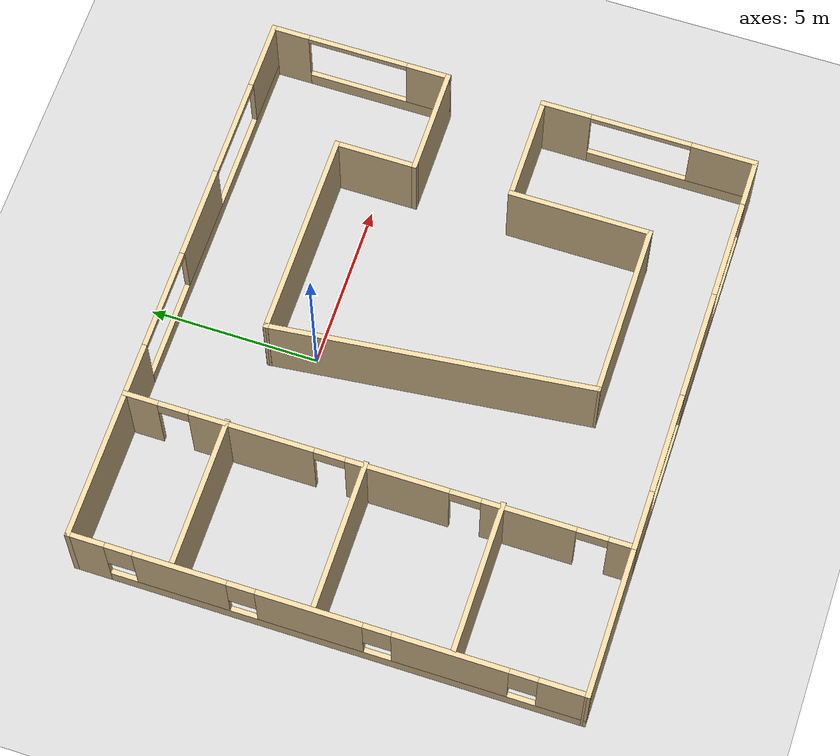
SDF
<sdf version="1.6">
 <world name="default">
  <light name="sun" type="directional">
   <pose>0 0 10 0 -0 0</pose>
   <diffuse>0.8 0.8 0.8 1</diffuse>
   <specular>0.2 0.2 0.2 1</specular>
   <attenuation>
    <range>1000</range>
    <constant>0.9</constant>
    <linear>0.01</linear>
    <quadratic>0.001</quadratic>
   </attenuation>
   <direction>-0.5 0.1 -0.9</direction>
  </light>
  <model name="ground_plane">
   <static>1</static>
   <link name="link">
    <collision name="collision">
     <geometry><plane><normal>0 0 1</normal><size>100 100</size></plane></geometry>
     <surface>
      <contact><collide_bitmask>65535</collide_bitmask></contact>
      <friction><ode><mu>100</mu><mu2>50</mu2></ode></friction>
     </surface>
    </collision>
    <visual name="visual">
     <cast_shadows>0</cast_shadows>
     <geometry><plane><normal>0 0 1</normal><size>100 100</size></plane></geometry>
     <material>
      <script><uri>file://media/materials/scripts/gazebo.material</uri><name>Gazebo/Grey</name></script>
     </material>
    </visual>
   </link>
  </model>
  <gravity>0 0 -9.8</gravity>
  <magnetic_field>6e-06 2.3e-05 -4.2e-05</magnetic_field>
  <atmosphere type="adiabatic"/>
  <physics name="default_physics" default="0" type="ode">
   <max_step_size>0.001</max_step_size>
   <real_time_factor>1</real_time_factor>
   <real_time_update_rate>1000</real_time_update_rate>
  </physics>
  <scene><ambient>0.4 0.4 0.4 1</ambient><background>0.7 0.7 0.7 1</background><shadows>1</shadows></scene>
  <spherical_coordinates>
   <surface_model>EARTH_WGS84</surface_model>
   <latitude_deg>0</latitude_deg>
   <longitude_deg>0</longitude_deg>
   <elevation>0</elevation>
   <heading_deg>0</heading_deg>
  </spherical_coordinates>
  <model name="office">
   <pose>0.38558 -3.06539 0 0 -0 0</pose>
   <link name="Wall_16">
    <pose>2.16663 7.30005 0 0 -0 0</pose>
    <visual name="Wall_16_Visual_0">
     <pose>-5.43994 0 1.25 0 -0 0</pose>
     <geometry><box><size>1.62012 0.15 2.5</size></box></geometry>
     <material>
      <script><uri>file://media/materials/scripts/gazebo.material</uri><name>Gazebo/Grey</name></script>
      <ambient>0.921569 0.807843 0.615686 1</ambient>
     </material>
     <meta><layer>0</layer></meta>
    </visual>
    <collision name="Wall_16_Collision_0">
     <geometry><box><size>1.62012 0.15 2.5</size></box></geometry>
     <pose>-5.43994 0 1.25 0 -0 0</pose>
    </collision>
    <visual name="Wall_16_Visual_1">
     <pose>0.810061 0 0.25 0 -0 0</pose>
     <geometry><box><size>10.8799 0.15 0.5</size></box></geometry>
     <material>
      <script><uri>file://media/materials/scripts/gazebo.material</uri><name>Gazebo/Grey</name></script>
      <ambient>0.921569 0.807843 0.615686 1</ambient>
     </material>
     <meta><layer>0</layer></meta>
    </visual>
    <collision name="Wall_16_Collision_1">
     <geometry><box><size>10.8799 0.15 0.5</size></box></geometry>
     <pose>0.810061 0 0.25 0 -0 0</pose>
    </collision>
    <visual name="Wall_16_Visual_2">
     <pose>-0.243954 0 1.5 0 -0 0</pose>
     <geometry><box><size>2.77185 0.15 2</size></box></geometry>
     <material>
      <script><uri>file://media/materials/scripts/gazebo.material</uri><name>Gazebo/Grey</name></script>
      <ambient>0.921569 0.807843 0.615686 1</ambient>
     </material>
     <meta><layer>0</layer></meta>
    </visual>
    <collision name="Wall_16_Collision_2">
     <geometry><box><size>2.77185 0.15 2</size></box></geometry>
     <pose>-0.243954 0 1.5 0 -0 0</pose>
    </collision>
    <visual name="Wall_16_Visual_3">
     <pose>5.19599 0 1.5 0 -0 0</pose>
     <geometry><box><size>2.10803 0.15 2</size></box></geometry>
     <material>
      <script><uri>file://media/materials/scripts/gazebo.material</uri><name>Gazebo/Grey</name></script>
      <ambient>0.921569 0.807843 0.615686 1</ambient>
     </material>
     <meta><layer>0</layer></meta>
    </visual>
    <collision name="Wall_16_Collision_3">
     <geometry><box><size>2.10803 0.15 2</size></box></geometry>
     <pose>5.19599 0 1.5 0 -0 0</pose>
    </collision>
    <visual name="Wall_16_Visual_4">
     <pose>-3.12988 0 2.4 0 -0 0</pose>
     <geometry><box><size>3 0.15 0.2</size></box></geometry>
     <material>
      <script><uri>file://media/materials/scripts/gazebo.material</uri><name>Gazebo/Grey</name></script>
      <ambient>0.921569 0.807843 0.615686 1</ambient>
     </material>
     <meta><layer>0</layer></meta>
    </visual>
    <collision name="Wall_16_Collision_4">
     <geometry><box><size>3 0.15 0.2</size></box></geometry>
     <pose>-3.12988 0 2.4 0 -0 0</pose>
    </collision>
    <visual name="Wall_16_Visual_5">
     <pose>2.64197 0 2.4 0 -0 0</pose>
     <geometry><box><size>3 0.15 0.2</size></box></geometry>
     <material>
      <script><uri>file://media/materials/scripts/gazebo.material</uri><name>Gazebo/Grey</name></script>
      <ambient>0.921569 0.807843 0.615686 1</ambient>
     </material>
     <meta><layer>0</layer></meta>
    </visual>
    <collision name="Wall_16_Collision_5">
     <geometry><box><size>3 0.15 0.2</size></box></geometry>
     <pose>2.64197 0 2.4 0 -0 0</pose>
    </collision>
   </link>
   <link name="Wall_17">
    <pose>8.34163 4.62505 0 0 0 -1.5708</pose>
    <visual name="Wall_17_Visual_0">
     <pose>-2.16525 0 1.25 0 -0 0</pose>
     <geometry><box><size>1.16949 0.15 2.5</size></box></geometry>
     <material>
      <script><uri>file://media/materials/scripts/gazebo.material</uri><name>Gazebo/Grey</name></script>
      <ambient>0.921569 0.807843 0.615686 1</ambient>
     </material>
     <meta><layer>0</layer></meta>
    </visual>
    <collision name="Wall_17_Collision_0">
     <geometry><box><size>1.16949 0.15 2.5</size></box></geometry>
     <pose>-2.16525 0 1.25 0 -0 0</pose>
    </collision>
    <visual name="Wall_17_Visual_1">
     <pose>0.584746 0 0.25 0 -0 0</pose>
     <geometry><box><size>4.33051 0.15 0.5</size></box></geometry>
     <material>
      <script><uri>file://media/materials/scripts/gazebo.material</uri><name>Gazebo/Grey</name></script>
      <ambient>0.921569 0.807843 0.615686 1</ambient>
     </material>
     <meta><layer>0</layer></meta>
    </visual>
    <collision name="Wall_17_Collision_1">
     <geometry><box><size>4.33051 0.15 0.5</size></box></geometry>
     <pose>0.584746 0 0.25 0 -0 0</pose>
    </collision>
    <visual name="Wall_17_Visual_2">
     <pose>2.08475 0 1.5 0 -0 0</pose>
     <geometry><box><size>1.33051 0.15 2</size></box></geometry>
     <material>
      <script><uri>file://media/materials/scripts/gazebo.material</uri><name>Gazebo/Grey</name></script>
      <ambient>0.921569 0.807843 0.615686 1</ambient>
     </material>
     <meta><layer>0</layer></meta>
    </visual>
    <collision name="Wall_17_Collision_2">
     <geometry><box><size>1.33051 0.15 2</size></box></geometry>
     <pose>2.08475 0 1.5 0 -0 0</pose>
    </collision>
    <visual name="Wall_17_Visual_3">
     <pose>-0.080508 0 2.4 0 -0 0</pose>
     <geometry><box><size>3 0.15 0.2</size></box></geometry>
     <material>
      <script><uri>file://media/materials/scripts/gazebo.material</uri><name>Gazebo/Grey</name></script>
      <ambient>0.921569 0.807843 0.615686 1</ambient>
     </material>
     <meta><layer>0</layer></meta>
    </visual>
    <collision name="Wall_17_Collision_3">
     <geometry><box><size>3 0.15 0.2</size></box></geometry>
     <pose>-0.080508 0 2.4 0 -0 0</pose>
    </collision>
   </link>
   <link name="Wall_18">
    <collision name="Wall_18_Collision">
     <geometry><box><size>3.25 0.15 2.5</size></box></geometry>
     <pose>0 0 1.25 0 -0 0</pose>
    </collision>
    <visual name="Wall_18_Visual">
     <pose>0 0 1.25 0 -0 0</pose>
     <geometry><box><size>3.25 0.15 2.5</size></box></geometry>
     <material>
      <script><uri>file://media/materials/scripts/gazebo.material</uri><name>Gazebo/Grey</name></script>
      <ambient>0.921569 0.807843 0.615686 1</ambient>
     </material>
     <meta><layer>0</layer></meta>
    </visual>
    <pose>6.79163 1.95005 0 0 -0 3.14159</pose>
   </link>
   <link name="Wall_19">
    <collision name="Wall_19_Collision">
     <geometry><box><size>2.5 0.15 2.5</size></box></geometry>
     <pose>0 0 1.25 0 -0 0</pose>
    </collision>
    <visual name="Wall_19_Visual">
     <pose>0 0 1.25 0 -0 0</pose>
     <geometry><box><size>2.5 0.15 2.5</size></box></geometry>
     <material>
      <script><uri>file://media/materials/scripts/gazebo.material</uri><name>Gazebo/Grey</name></script>
      <ambient>0.921569 0.807843 0.615686 1</ambient>
     </material>
     <meta><layer>0</layer></meta>
    </visual>
    <pose>5.24163 3.12505 0 0 -0 1.5708</pose>
   </link>
   <link name="Wall_20">
    <collision name="Wall_20_Collision">
     <geometry><box><size>6.25 0.15 2.5</size></box></geometry>
     <pose>0 0 1.25 0 -0 0</pose>
    </collision>
    <visual name="Wall_20_Visual">
     <pose>0 0 1.25 0 -0 0</pose>
     <geometry><box><size>6.25 0.15 2.5</size></box></geometry>
     <material>
      <script><uri>file://media/materials/scripts/gazebo.material</uri><name>Gazebo/Grey</name></script>
      <ambient>0.921569 0.807843 0.615686 1</ambient>
     </material>
     <meta><layer>0</layer></meta>
    </visual>
    <pose>2.19163 4.30005 0 0 -0 3.14159</pose>
   </link>
   <link name="Wall_21">
    <collision name="Wall_21_Collision">
     <geometry><box><size>9.54415 0.15 2.5</size></box></geometry>
     <pose>0 0 1.25 0 -0 0</pose>
    </collision>
    <visual name="Wall_21_Visual">
     <pose>0 0 1.25 0 -0 0</pose>
     <geometry><box><size>9.54415 0.15 2.5</size></box></geometry>
     <material>
      <script><uri>file://media/materials/scripts/gazebo.material</uri><name>Gazebo/Grey</name></script>
      <ambient>0.921569 0.807843 0.615686 1</ambient>
     </material>
     <meta><layer>0</layer></meta>
    </visual>
    <pose>-0.349906 -0.369424 0 0 0 -1.46233</pose>
   </link>
   <link name="Wall_22">
    <collision name="Wall_22_Collision">
     <geometry><box><size>5.25 0.15 2.5</size></box></geometry>
     <pose>0 0 1.25 0 -0 0</pose>
    </collision>
    <visual name="Wall_22_Visual">
     <pose>0 0 1.25 0 -0 0</pose>
     <geometry><box><size>5.25 0.15 2.5</size></box></geometry>
     <material>
      <script><uri>file://media/materials/scripts/gazebo.material</uri><name>Gazebo/Grey</name></script>
      <ambient>0.921569 0.807843 0.615686 1</ambient>
     </material>
     <meta><layer>0</layer></meta>
    </visual>
    <pose>2.70856 -5.0389 0 0 -0 0</pose>
   </link>
   <link name="Wall_23">
    <collision name="Wall_23_Collision">
     <geometry><box><size>4.25 0.15 2.5</size></box></geometry>
     <pose>0 0 1.25 0 -0 0</pose>
    </collision>
    <visual name="Wall_23_Visual">
     <pose>0 0 1.25 0 -0 0</pose>
     <geometry><box><size>4.25 0.15 2.5</size></box></geometry>
     <material>
      <script><uri>file://media/materials/scripts/gazebo.material</uri><name>Gazebo/Grey</name></script>
      <ambient>0.921569 0.807843 0.615686 1</ambient>
     </material>
     <meta><layer>0</layer></meta>
    </visual>
    <pose>5.25856 -2.9889 0 0 -0 1.5708</pose>
   </link>
   <link name="Wall_24">
    <collision name="Wall_24_Collision">
     <geometry><box><size>3.25 0.15 2.5</size></box></geometry>
     <pose>0 0 1.25 0 -0 0</pose>
    </collision>
    <visual name="Wall_24_Visual">
     <pose>0 0 1.25 0 -0 0</pose>
     <geometry><box><size>3.25 0.15 2.5</size></box></geometry>
     <material>
      <script><uri>file://media/materials/scripts/gazebo.material</uri><name>Gazebo/Grey</name></script>
      <ambient>0.921569 0.807843 0.615686 1</ambient>
     </material>
     <meta><layer>0</layer></meta>
    </visual>
    <pose>6.80856 -0.9389 0 0 -0 0</pose>
   </link>
   <link name="Wall_25">
    <pose>8.35856 -4.1139 0 0 0 -1.5708</pose>
    <visual name="Wall_25_Visual_0">
     <pose>-2.4888 0 1.25 0 -0 0</pose>
     <geometry><box><size>1.52241 0.15 2.5</size></box></geometry>
     <material>
      <script><uri>file://media/materials/scripts/gazebo.material</uri><name>Gazebo/Grey</name></script>
      <ambient>0.921569 0.807843 0.615686 1</ambient>
     </material>
     <meta><layer>0</layer></meta>
    </visual>
    <collision name="Wall_25_Collision_0">
     <geometry><box><size>1.52241 0.15 2.5</size></box></geometry>
     <pose>-2.4888 0 1.25 0 -0 0</pose>
    </collision>
    <visual name="Wall_25_Visual_1">
     <pose>0.761203 0 0.25 0 -0 0</pose>
     <geometry><box><size>4.97759 0.15 0.5</size></box></geometry>
     <material>
      <script><uri>file://media/materials/scripts/gazebo.material</uri><name>Gazebo/Grey</name></script>
      <ambient>0.921569 0.807843 0.615686 1</ambient>
     </material>
     <meta><layer>0</layer></meta>
    </visual>
    <collision name="Wall_25_Collision_1">
     <geometry><box><size>4.97759 0.15 0.5</size></box></geometry>
     <pose>0.761203 0 0.25 0 -0 0</pose>
    </collision>
    <visual name="Wall_25_Visual_2">
     <pose>2.2612 0 1.5 0 -0 0</pose>
     <geometry><box><size>1.97759 0.15 2</size></box></geometry>
     <material>
      <script><uri>file://media/materials/scripts/gazebo.material</uri><name>Gazebo/Grey</name></script>
      <ambient>0.921569 0.807843 0.615686 1</ambient>
     </material>
     <meta><layer>0</layer></meta>
    </visual>
    <collision name="Wall_25_Collision_2">
     <geometry><box><size>1.97759 0.15 2</size></box></geometry>
     <pose>2.2612 0 1.5 0 -0 0</pose>
    </collision>
    <visual name="Wall_25_Visual_3">
     <pose>-0.227595 0 2.4 0 -0 0</pose>
     <geometry><box><size>3 0.15 0.2</size></box></geometry>
     <material>
      <script><uri>file://media/materials/scripts/gazebo.material</uri><name>Gazebo/Grey</name></script>
      <ambient>0.921569 0.807843 0.615686 1</ambient>
     </material>
     <meta><layer>0</layer></meta>
    </visual>
    <collision name="Wall_25_Collision_3">
     <geometry><box><size>3 0.15 0.2</size></box></geometry>
     <pose>-0.227595 0 2.4 0 -0 0</pose>
    </collision>
   </link>
   <link name="Wall_27">
    <pose>2.18356 -7.2889 0 0 -0 3.14159</pose>
    <visual name="Wall_27_Visual_0">
     <pose>-5.50692 0 1.25 0 -0 0</pose>
     <geometry><box><size>1.48615 0.15 2.5</size></box></geometry>
     <material>
      <script><uri>file://media/materials/scripts/gazebo.material</uri><name>Gazebo/Grey</name></script>
      <ambient>0.921569 0.807843 0.615686 1</ambient>
     </material>
     <meta><layer>0</layer></meta>
    </visual>
    <collision name="Wall_27_Collision_0">
     <geometry><box><size>1.48615 0.15 2.5</size></box></geometry>
     <pose>-5.50692 0 1.25 0 -0 0</pose>
    </collision>
    <visual name="Wall_27_Visual_1">
     <pose>0.743078 0 0.25 0 -0 0</pose>
     <geometry><box><size>11.0138 0.15 0.5</size></box></geometry>
     <material>
      <script><uri>file://media/materials/scripts/gazebo.material</uri><name>Gazebo/Grey</name></script>
      <ambient>0.921569 0.807843 0.615686 1</ambient>
     </material>
     <meta><layer>0</layer></meta>
    </visual>
    <collision name="Wall_27_Collision_1">
     <geometry><box><size>11.0138 0.15 0.5</size></box></geometry>
     <pose>0.743078 0 0.25 0 -0 0</pose>
    </collision>
    <visual name="Wall_27_Visual_2">
     <pose>-0.138321 0 1.5 0 -0 0</pose>
     <geometry><box><size>3.25105 0.15 2</size></box></geometry>
     <material>
      <script><uri>file://media/materials/scripts/gazebo.material</uri><name>Gazebo/Grey</name></script>
      <ambient>0.921569 0.807843 0.615686 1</ambient>
     </material>
     <meta><layer>0</layer></meta>
    </visual>
    <collision name="Wall_27_Collision_2">
     <geometry><box><size>3.25105 0.15 2</size></box></geometry>
     <pose>-0.138321 0 1.5 0 -0 0</pose>
    </collision>
    <visual name="Wall_27_Visual_3">
     <pose>5.3686 0 1.5 0 -0 0</pose>
     <geometry><box><size>1.7628 0.15 2</size></box></geometry>
     <material>
      <script><uri>file://media/materials/scripts/gazebo.material</uri><name>Gazebo/Grey</name></script>
      <ambient>0.921569 0.807843 0.615686 1</ambient>
     </material>
     <meta><layer>0</layer></meta>
    </visual>
    <collision name="Wall_27_Collision_3">
     <geometry><box><size>1.7628 0.15 2</size></box></geometry>
     <pose>5.3686 0 1.5 0 -0 0</pose>
    </collision>
    <visual name="Wall_27_Visual_4">
     <pose>-3.26384 0 2.4 0 -0 0</pose>
     <geometry><box><size>3 0.15 0.2</size></box></geometry>
     <material>
      <script><uri>file://media/materials/scripts/gazebo.material</uri><name>Gazebo/Grey</name></script>
      <ambient>0.921569 0.807843 0.615686 1</ambient>
     </material>
     <meta><layer>0</layer></meta>
    </visual>
    <collision name="Wall_27_Collision_4">
     <geometry><box><size>3 0.15 0.2</size></box></geometry>
     <pose>-3.26384 0 2.4 0 -0 0</pose>
    </collision>
    <visual name="Wall_27_Visual_5">
     <pose>2.9872 0 2.4 0 -0 0</pose>
     <geometry><box><size>3 0.15 0.2</size></box></geometry>
     <material>
      <script><uri>file://media/materials/scripts/gazebo.material</uri><name>Gazebo/Grey</name></script>
      <ambient>0.921569 0.807843 0.615686 1</ambient>
     </material>
     <meta><layer>0</layer></meta>
    </visual>
    <collision name="Wall_27_Collision_5">
     <geometry><box><size>3 0.15 0.2</size></box></geometry>
     <pose>2.9872 0 2.4 0 -0 0</pose>
    </collision>
   </link>
   <link name="Wall_28">
    <pose>-3.99991 0.005576 0 0 -0 1.57196</pose>
    <visual name="Wall_28_Visual_0">
     <pose>-6.97284 0 1.25 0 -0 0</pose>
     <geometry><box><size>0.793275 0.15 2.5</size></box></geometry>
     <material>
      <script><uri>file://media/materials/scripts/gazebo.material</uri><name>Gazebo/Grey</name></script>
      <ambient>0.921569 0.807843 0.615686 1</ambient>
     </material>
     <meta><layer>0</layer></meta>
    </visual>
    <collision name="Wall_28_Collision_0">
     <geometry><box><size>0.793275 0.15 2.5</size></box></geometry>
     <pose>-6.97284 0 1.25 0 -0 0</pose>
    </collision>
    <visual name="Wall_28_Visual_1">
     <pose>-4.33085 0 1.25 0 -0 0</pose>
     <geometry><box><size>2.69072 0.15 2.5</size></box></geometry>
     <material>
      <script><uri>file://media/materials/scripts/gazebo.material</uri><name>Gazebo/Grey</name></script>
      <ambient>0.921569 0.807843 0.615686 1</ambient>
     </material>
     <meta><layer>0</layer></meta>
    </visual>
    <collision name="Wall_28_Collision_1">
     <geometry><box><size>2.69072 0.15 2.5</size></box></geometry>
     <pose>-4.33085 0 1.25 0 -0 0</pose>
    </collision>
    <visual name="Wall_28_Visual_2">
     <pose>-0.593492 0 1.25 0 -0 0</pose>
     <geometry><box><size>2.984 0.15 2.5</size></box></geometry>
     <material>
      <script><uri>file://media/materials/scripts/gazebo.material</uri><name>Gazebo/Grey</name></script>
      <ambient>0.921569 0.807843 0.615686 1</ambient>
     </material>
     <meta><layer>0</layer></meta>
    </visual>
    <collision name="Wall_28_Collision_2">
     <geometry><box><size>2.984 0.15 2.5</size></box></geometry>
     <pose>-0.593492 0 1.25 0 -0 0</pose>
    </collision>
    <visual name="Wall_28_Visual_3">
     <pose>3.61338 0 1.25 0 -0 0</pose>
     <geometry><box><size>3.62975 0.15 2.5</size></box></geometry>
     <material>
      <script><uri>file://media/materials/scripts/gazebo.material</uri><name>Gazebo/Grey</name></script>
      <ambient>0.921569 0.807843 0.615686 1</ambient>
     </material>
     <meta><layer>0</layer></meta>
    </visual>
    <collision name="Wall_28_Collision_3">
     <geometry><box><size>3.62975 0.15 2.5</size></box></geometry>
     <pose>3.61338 0 1.25 0 -0 0</pose>
    </collision>
    <visual name="Wall_28_Visual_4">
     <pose>6.84887 0 1.25 0 -0 0</pose>
     <geometry><box><size>1.04123 0.15 2.5</size></box></geometry>
     <material>
      <script><uri>file://media/materials/scripts/gazebo.material</uri><name>Gazebo/Grey</name></script>
      <ambient>0.921569 0.807843 0.615686 1</ambient>
     </material>
     <meta><layer>0</layer></meta>
    </visual>
    <collision name="Wall_28_Collision_4">
     <geometry><box><size>1.04123 0.15 2.5</size></box></geometry>
     <pose>6.84887 0 1.25 0 -0 0</pose>
    </collision>
    <visual name="Wall_28_Visual_5">
     <pose>-6.12621 0 2.25 0 -0 0</pose>
     <geometry><box><size>0.9 0.15 0.5</size></box></geometry>
     <material>
      <script><uri>file://media/materials/scripts/gazebo.material</uri><name>Gazebo/Grey</name></script>
      <ambient>0.921569 0.807843 0.615686 1</ambient>
     </material>
     <meta><layer>0</layer></meta>
    </visual>
    <collision name="Wall_28_Collision_5">
     <geometry><box><size>0.9 0.15 0.5</size></box></geometry>
     <pose>-6.12621 0 2.25 0 -0 0</pose>
    </collision>
    <visual name="Wall_28_Visual_6">
     <pose>-2.53549 0 2.25 0 -0 0</pose>
     <geometry><box><size>0.9 0.15 0.5</size></box></geometry>
     <material>
      <script><uri>file://media/materials/scripts/gazebo.material</uri><name>Gazebo/Grey</name></script>
      <ambient>0.921569 0.807843 0.615686 1</ambient>
     </material>
     <meta><layer>0</layer></meta>
    </visual>
    <collision name="Wall_28_Collision_6">
     <geometry><box><size>0.9 0.15 0.5</size></box></geometry>
     <pose>-2.53549 0 2.25 0 -0 0</pose>
    </collision>
    <visual name="Wall_28_Visual_7">
     <pose>1.34851 0 2.25 0 -0 0</pose>
     <geometry><box><size>0.9 0.15 0.5</size></box></geometry>
     <material>
      <script><uri>file://media/materials/scripts/gazebo.material</uri><name>Gazebo/Grey</name></script>
      <ambient>0.921569 0.807843 0.615686 1</ambient>
     </material>
     <meta><layer>0</layer></meta>
    </visual>
    <collision name="Wall_28_Collision_7">
     <geometry><box><size>0.9 0.15 0.5</size></box></geometry>
     <pose>1.34851 0 2.25 0 -0 0</pose>
    </collision>
    <visual name="Wall_28_Visual_8">
     <pose>5.87826 0 2.25 0 -0 0</pose>
     <geometry><box><size>0.9 0.15 0.5</size></box></geometry>
     <material>
      <script><uri>file://media/materials/scripts/gazebo.material</uri><name>Gazebo/Grey</name></script>
      <ambient>0.921569 0.807843 0.615686 1</ambient>
     </material>
     <meta><layer>0</layer></meta>
    </visual>
    <collision name="Wall_28_Collision_8">
     <geometry><box><size>0.9 0.15 0.5</size></box></geometry>
     <pose>5.87826 0 2.25 0 -0 0</pose>
    </collision>
   </link>
   <link name="Wall_30">
    <collision name="Wall_30_Collision">
     <geometry><box><size>4.5 0.15 2.5</size></box></geometry>
     <pose>0 0 1.25 0 -0 0</pose>
    </collision>
    <visual name="Wall_30_Visual">
     <pose>0 0 1.25 0 -0 0</pose>
     <geometry><box><size>4.5 0.15 2.5</size></box></geometry>
     <material>
      <script><uri>file://media/materials/scripts/gazebo.material</uri><name>Gazebo/Grey</name></script>
      <ambient>0.921569 0.807843 0.615686 1</ambient>
     </material>
     <meta><layer>0</layer></meta>
    </visual>
    <pose>-6.18337 7.30005 0 0 -0 3.14159</pose>
   </link>
   <link name="Wall_31">
    <pose>-8.35837 5.1e-05 0 0 0 -1.5708</pose>
    <visual name="Wall_31_Visual_0">
     <pose>-6.81216 0 1.25 0 -0 0</pose>
     <geometry><box><size>1.12568 0.15 2.5</size></box></geometry>
     <material>
      <script><uri>file://media/materials/scripts/gazebo.material</uri><name>Gazebo/Grey</name></script>
      <ambient>0.921569 0.807843 0.615686 1</ambient>
     </material>
     <meta><layer>0</layer></meta>
    </visual>
    <collision name="Wall_31_Collision_0">
     <geometry><box><size>1.12568 0.15 2.5</size></box></geometry>
     <pose>-6.81216 0 1.25 0 -0 0</pose>
    </collision>
    <visual name="Wall_31_Visual_1">
     <pose>0.562842 0 0.25 0 -0 0</pose>
     <geometry><box><size>13.6243 0.15 0.5</size></box></geometry>
     <material>
      <script><uri>file://media/materials/scripts/gazebo.material</uri><name>Gazebo/Grey</name></script>
      <ambient>0.921569 0.807843 0.615686 1</ambient>
     </material>
     <meta><layer>0</layer></meta>
    </visual>
    <collision name="Wall_31_Collision_1">
     <geometry><box><size>13.6243 0.15 0.5</size></box></geometry>
     <pose>0.562842 0 0.25 0 -0 0</pose>
    </collision>
    <visual name="Wall_31_Visual_2">
     <pose>-4.107 0 1.5 0 -0 0</pose>
     <geometry><box><size>2.68463 0.15 2</size></box></geometry>
     <material>
      <script><uri>file://media/materials/scripts/gazebo.material</uri><name>Gazebo/Grey</name></script>
      <ambient>0.921569 0.807843 0.615686 1</ambient>
     </material>
     <meta><layer>0</layer></meta>
    </visual>
    <collision name="Wall_31_Collision_2">
     <geometry><box><size>2.68463 0.15 2</size></box></geometry>
     <pose>-4.107 0 1.5 0 -0 0</pose>
    </collision>
    <visual name="Wall_31_Visual_3">
     <pose>-0.449476 0 1.5 0 -0 0</pose>
     <geometry><box><size>3.03043 0.15 2</size></box></geometry>
     <material>
      <script><uri>file://media/materials/scripts/gazebo.material</uri><name>Gazebo/Grey</name></script>
      <ambient>0.921569 0.807843 0.615686 1</ambient>
     </material>
     <meta><layer>0</layer></meta>
    </visual>
    <collision name="Wall_31_Collision_3">
     <geometry><box><size>3.03043 0.15 2</size></box></geometry>
     <pose>-0.449476 0 1.5 0 -0 0</pose>
    </collision>
    <visual name="Wall_31_Visual_4">
     <pose>3.50065 0 1.5 0 -0 0</pose>
     <geometry><box><size>3.26983 0.15 2</size></box></geometry>
     <material>
      <script><uri>file://media/materials/scripts/gazebo.material</uri><name>Gazebo/Grey</name></script>
      <ambient>0.921569 0.807843 0.615686 1</ambient>
     </material>
     <meta><layer>0</layer></meta>
    </visual>
    <collision name="Wall_31_Collision_4">
     <geometry><box><size>3.26983 0.15 2</size></box></geometry>
     <pose>3.50065 0 1.5 0 -0 0</pose>
    </collision>
    <visual name="Wall_31_Visual_5">
     <pose>6.65528 0 1.5 0 -0 0</pose>
     <geometry><box><size>1.43943 0.15 2</size></box></geometry>
     <material>
      <script><uri>file://media/materials/scripts/gazebo.material</uri><name>Gazebo/Grey</name></script>
      <ambient>0.921569 0.807843 0.615686 1</ambient>
     </material>
     <meta><layer>0</layer></meta>
    </visual>
    <collision name="Wall_31_Collision_5">
     <geometry><box><size>1.43943 0.15 2</size></box></geometry>
     <pose>6.65528 0 1.5 0 -0 0</pose>
    </collision>
    <visual name="Wall_31_Visual_6">
     <pose>-5.84932 0 1.9 0 -0 0</pose>
     <geometry><box><size>0.8 0.15 1.2</size></box></geometry>
     <material>
      <script><uri>file://media/materials/scripts/gazebo.material</uri><name>Gazebo/Grey</name></script>
      <ambient>0.921569 0.807843 0.615686 1</ambient>
     </material>
     <meta><layer>0</layer></meta>
    </visual>
    <collision name="Wall_31_Collision_6">
     <geometry><box><size>0.8 0.15 1.2</size></box></geometry>
     <pose>-5.84932 0 1.9 0 -0 0</pose>
    </collision>
    <visual name="Wall_31_Visual_7">
     <pose>-2.36469 0 1.9 0 -0 0</pose>
     <geometry><box><size>0.8 0.15 1.2</size></box></geometry>
     <material>
      <script><uri>file://media/materials/scripts/gazebo.material</uri><name>Gazebo/Grey</name></script>
      <ambient>0.921569 0.807843 0.615686 1</ambient>
     </material>
     <meta><layer>0</layer></meta>
    </visual>
    <collision name="Wall_31_Collision_7">
     <geometry><box><size>0.8 0.15 1.2</size></box></geometry>
     <pose>-2.36469 0 1.9 0 -0 0</pose>
    </collision>
    <visual name="Wall_31_Visual_8">
     <pose>1.46574 0 1.9 0 -0 0</pose>
     <geometry><box><size>0.8 0.15 1.2</size></box></geometry>
     <material>
      <script><uri>file://media/materials/scripts/gazebo.material</uri><name>Gazebo/Grey</name></script>
      <ambient>0.921569 0.807843 0.615686 1</ambient>
     </material>
     <meta><layer>0</layer></meta>
    </visual>
    <collision name="Wall_31_Collision_8">
     <geometry><box><size>0.8 0.15 1.2</size></box></geometry>
     <pose>1.46574 0 1.9 0 -0 0</pose>
    </collision>
    <visual name="Wall_31_Visual_9">
     <pose>5.53557 0 1.9 0 -0 0</pose>
     <geometry><box><size>0.8 0.15 1.2</size></box></geometry>
     <material>
      <script><uri>file://media/materials/scripts/gazebo.material</uri><name>Gazebo/Grey</name></script>
      <ambient>0.921569 0.807843 0.615686 1</ambient>
     </material>
     <meta><layer>0</layer></meta>
    </visual>
    <collision name="Wall_31_Collision_9">
     <geometry><box><size>0.8 0.15 1.2</size></box></geometry>
     <pose>5.53557 0 1.9 0 -0 0</pose>
    </collision>
   </link>
   <link name="Wall_32">
    <collision name="Wall_32_Collision">
     <geometry><box><size>4.51694 0.15 2.5</size></box></geometry>
     <pose>0 0 1.25 0 -0 0</pose>
    </collision>
    <visual name="Wall_32_Visual">
     <pose>0 0 1.25 0 -0 0</pose>
     <geometry><box><size>4.51694 0.15 2.5</size></box></geometry>
     <material>
      <script><uri>file://media/materials/scripts/gazebo.material</uri><name>Gazebo/Grey</name></script>
      <ambient>0.921569 0.807843 0.615686 1</ambient>
     </material>
     <meta><layer>0</layer></meta>
    </visual>
    <pose>-6.1749 -7.29442 0 0 -0 0.00253</pose>
   </link>
   <link name="Wall_35">
    <collision name="Wall_35_Collision">
     <geometry><box><size>4.5 0.15 2.5</size></box></geometry>
     <pose>0 0 1.25 0 -0 0</pose>
    </collision>
    <visual name="Wall_35_Visual">
     <pose>0 0 1.25 0 -0 0</pose>
     <geometry><box><size>4.5 0.15 2.5</size></box></geometry>
     <material>
      <script><uri>file://media/materials/scripts/gazebo.material</uri><name>Gazebo/Grey</name></script>
      <ambient>0.921569 0.807843 0.615686 1</ambient>
     </material>
     <meta><layer>0</layer></meta>
    </visual>
    <pose>-6.12166 4.34679 0 0 -0 0</pose>
   </link>
   <link name="Wall_37">
    <collision name="Wall_37_Collision">
     <geometry><box><size>4.5 0.15 2.5</size></box></geometry>
     <pose>0 0 1.25 0 -0 0</pose>
    </collision>
    <visual name="Wall_37_Visual">
     <pose>0 0 1.25 0 -0 0</pose>
     <geometry><box><size>4.5 0.15 2.5</size></box></geometry>
     <material>
      <script><uri>file://media/materials/scripts/gazebo.material</uri><name>Gazebo/Grey</name></script>
      <ambient>0.921569 0.807843 0.615686 1</ambient>
     </material>
     <meta><layer>0</layer></meta>
    </visual>
    <pose>-6.1299 0.343127 0 0 -0 0</pose>
   </link>
   <link name="Wall_39">
    <collision name="Wall_39_Collision">
     <geometry><box><size>4.5 0.15 2.5</size></box></geometry>
     <pose>0 0 1.25 0 -0 0</pose>
    </collision>
    <visual name="Wall_39_Visual">
     <pose>0 0 1.25 0 -0 0</pose>
     <geometry><box><size>4.5 0.15 2.5</size></box></geometry>
     <material>
      <script><uri>file://media/materials/scripts/gazebo.material</uri><name>Gazebo/Grey</name></script>
      <ambient>0.921569 0.807843 0.615686 1</ambient>
     </material>
     <meta><layer>0</layer></meta>
    </visual>
    <pose>-6.1033 -3.5671 0 0 -0 0</pose>
   </link>
   <static>1</static>
  </model>
  <model name="my_ball">
   <link name="link_0">
    <inertial>
     <mass>1</mass>
     <inertia><ixx>0.1</ixx><ixy>0</ixy><ixz>0</ixz><iyy>0.1</iyy><iyz>0</iyz><izz>0.1</izz></inertia>
    </inertial>
    <visual name="visual">
     <geometry><sphere><radius>0.1</radius></sphere></geometry>
     <material>
      <lighting>1</lighting>
      <script><uri>file://media/materials/scripts/gazebo.material</uri><name>Gazebo/Grey</name></script>
      <ambient>1 1 1 1</ambient>
      <diffuse>1 1 1 1</diffuse>
      <specular>1 1 1 1</specular>
      <emissive>1 1 1 1</emissive>
      <shader type="vertex"><normal_map>__default__</normal_map></shader>
     </material>
    </visual>
    <collision name="collision">
     <geometry><sphere><radius>0.1</radius></sphere></geometry>
     <surface>
      <friction>
       <ode><mu>1</mu><mu2>1</mu2><fdir1>0 0 0</fdir1><slip1>0</slip1><slip2>0</slip2></ode>
       <torsional>
        <coefficient>1</coefficient>
        <patch_radius>0</patch_radius>
        <surface_radius>0</surface_radius>
        <use_patch_radius>1</use_patch_radius>
        <ode><slip>0</slip></ode>
       </torsional>
      </friction>
      <bounce><restitution_coefficient>0</restitution_coefficient><threshold>1e+06</threshold></bounce>
      <contact>
       <collide_without_contact>0</collide_without_contact>
       <collide_without_contact_bitmask>1</collide_without_contact_bitmask>
       <collide_bitmask>1</collide_bitmask>
       <ode>
        <soft_cfm>0</soft_cfm>
        <soft_erp>0.2</soft_erp>
        <kp>1e+13</kp>
        <kd>1</kd>
        <max_vel>0.01</max_vel>
        <min_depth>0</min_depth>
       </ode>
       <bullet>
        <split_impulse>1</split_impulse>
        <split_impulse_penetration_threshold>-0.01</split_impulse_penetration_threshold>
        <soft_cfm>0</soft_cfm>
        <soft_erp>0.2</soft_erp>
        <kp>1e+13</kp>
        <kd>1</kd>
       </bullet>
      </contact>
     </surface>
    </collision>
   </link>
   <static>0</static>
   <pose>-2.94591 -7.67231 0.1 0 -0 0</pose>
  </model>
  <plugin filename="libcollision_map_creator.so" name="collision_map_creator"/>
 </world>
</sdf>
